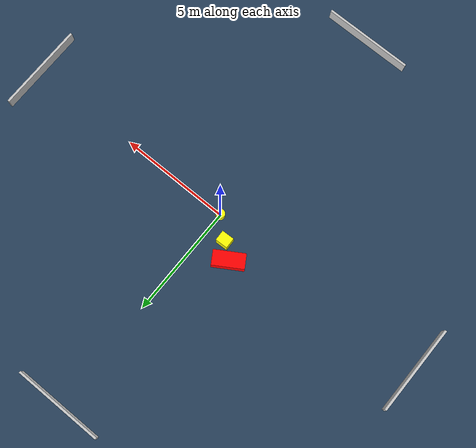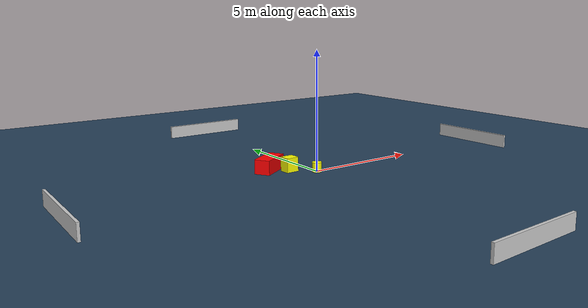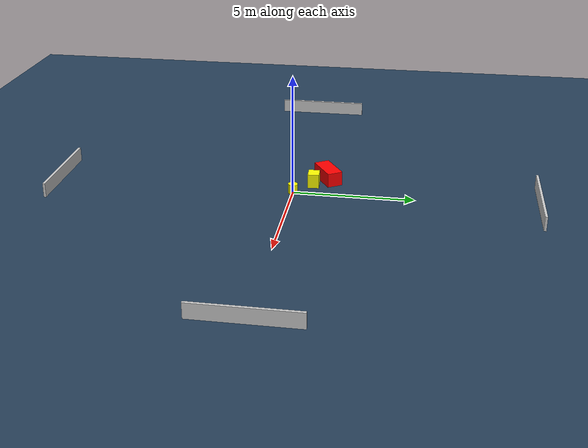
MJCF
<?xml version="1.0" ?>
<mujoco model="generated_environment">
  <option timestep="0.01" integrator="RK4" cone="elliptic"/>
  <default>
    <geom density="1"/>
  </default>
  <asset>
    <texture builtin="gradient" height="3072" name="skybox" rgb1="0.3 0.5 0.7" rgb2="0 0 0" type="skybox" width="512"/>
    <texture builtin="checker" height="300" name="groundplane" rgb1="0.2 0.3 0.4" rgb2="0.1 0.2 0.3" type="2d" width="300"/>
    <material name="groundplane" reflectance="0.2" texrepeat="5 5" texture="groundplane"/>
  </asset>
  <worldbody>
    <light dir="0 0 -1" directional="true" pos="0 0 1.5"/>
    <geom condim="3" friction="0.5 0.005 0.001" material="groundplane" name="floor" pos="0 0 0" size="0 0 0.05" type="plane"/>
    <body name="walls">
      <geom name="wall_1" condim="4" pos="-10.0 0.0 0.3" rgba="0.800000011920929 0.800000011920929 0.800000011920929 1.0" size="0.05 2.0 0.3" type="box"/>
      <geom name="wall_2" condim="4" pos="10.0 0.0 0.3" rgba="0.800000011920929 0.800000011920929 0.800000011920929 1.0" size="0.05 2.0 0.3" type="box"/>
      <geom name="wall_3" condim="4" pos="0.0 -10.0 0.3" rgba="0.800000011920929 0.800000011920929 0.800000011920929 1.0" size="2.0 0.05 0.3" type="box"/>
      <geom name="wall_4" condim="4" pos="0.0 10.0 0.3" rgba="0.800000011920929 0.800000011920929 0.800000011920929 1.0" size="2.0 0.05 0.3" type="box"/>
    </body>
    <body name="robot">
      <joint name="joint_x" type="slide" pos="0 0 0" axis="1 0 0"/>
      <joint name="joint_y" type="slide" pos="0 0 0" axis="0 1 0"/>
      <geom name="robot" type="cylinder" pos="0.0 0.0 0.2" size="0.2 0.2 0.0" mass="5.0" friction="1.0 0.005 0.0001" condim="4" rgba="1.0 1.0 0.0 1.0"/>
    </body>
    <body name="obstacle_1_movable">
      <geom name="obstacle_1_movable" condim="4" pos="-0.8468190673509423 0.7535654033382894 0.3" euler="0 0 272.28422185991786" friction="0.0 0.005 0.001" rgba="1.0 1.0 0.0 1.0" size="0.23451968519138564 0.2762519927643702 0.3" type="box" mass="0.1"/>
      <joint type="free"/>
    </body>
    <body name="obstacle_2_static">
      <geom name="obstacle_2_static" condim="4" pos="-1.4977359824657792 1.2852801542803638 0.3" euler="0 0 31.717727168782737" friction="0.0 0.005 0.001" rgba="1.0 0.0 0.0 1.0" size="0.6950119546156829 0.329266053446311 0.3" type="box"/>
    </body>
  </worldbody>
  <actuator>
    <motor name="actuator_x" joint="joint_x" gear="1" ctrlrange="-1 1"/>
    <motor name="actuator_y" joint="joint_y" gear="1" ctrlrange="-1 1"/>
  </actuator>
</mujoco>
